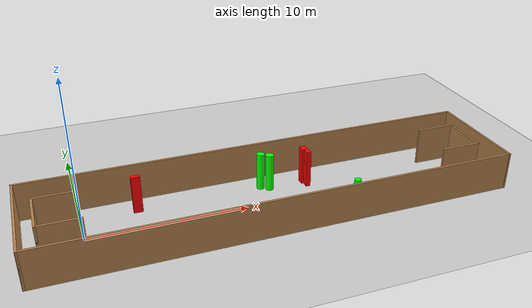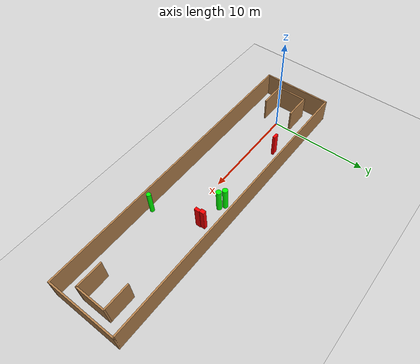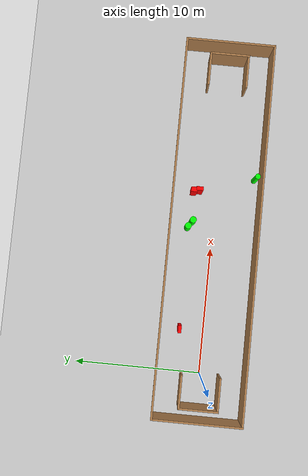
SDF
<sdf version="1.7">
 <world name="default">
  <light name="sun" type="directional">
   <pose>0 0 10 0 -0 0</pose>
   <diffuse>0.8 0.8 0.8 1</diffuse>
   <specular>0.2 0.2 0.2 1</specular>
   <attenuation>
    <range>1000</range>
    <constant>0.9</constant>
    <linear>0.01</linear>
    <quadratic>0.001</quadratic>
   </attenuation>
   <direction>-0.5 0.1 -0.9</direction>
   <spot><inner_angle>0</inner_angle><outer_angle>0</outer_angle><falloff>0</falloff></spot>
  </light>
  <model name="ground_plane">
   <static>1</static>
   <link name="link">
    <collision name="collision">
     <geometry><plane><normal>0 0 1</normal><size>100 100</size></plane></geometry>
     <surface>
      <contact><collide_bitmask>65535</collide_bitmask></contact>
      <friction><ode><mu>100</mu><mu2>50</mu2></ode></friction>
     </surface>
    </collision>
    <visual name="visual">
     <cast_shadows>0</cast_shadows>
     <geometry><plane><normal>0 0 1</normal><size>100 100</size></plane></geometry>
     <material>
      <script><uri>file://media/materials/scripts/gazebo.material</uri><name>Gazebo/Grey</name></script>
     </material>
    </visual>
   </link>
  </model>
  <gravity>0 0 -9.8</gravity>
  <magnetic_field>6e-06 2.3e-05 -4.2e-05</magnetic_field>
  <atmosphere type="adiabatic"/>
  <physics type="ode">
   <max_step_size>0.001</max_step_size>
   <real_time_factor>1</real_time_factor>
   <real_time_update_rate>1000</real_time_update_rate>
  </physics>
  <scene><ambient>0.4 0.4 0.4 1</ambient><background>0.7 0.7 0.7 1</background><shadows>1</shadows></scene>
  <spherical_coordinates>
   <surface_model>EARTH_WGS84</surface_model>
   <latitude_deg>0</latitude_deg>
   <longitude_deg>0</longitude_deg>
   <elevation>0</elevation>
   <heading_deg>0</heading_deg>
  </spherical_coordinates>
  <model name="my_base_walls">
   <link name="Wall_0">
    <collision name="Wall_0_Collision">
     <geometry><box><size>7.15 0.15 2.5</size></box></geometry>
     <pose>0 0 1.25 0 -0 0</pose>
    </collision>
    <visual name="Wall_0_Visual">
     <pose>0 0 1.25 0 -0 0</pose>
     <geometry><box><size>7.15 0.15 2.5</size></box></geometry>
     <material>
      <script><uri>file://media/materials/scripts/gazebo.material</uri><name>Gazebo/Wood</name></script>
      <ambient>1 1 1 1</ambient>
     </material>
     <meta><layer>0</layer></meta>
    </visual>
    <pose>-15 0 0 0 -0 1.5708</pose>
   </link>
   <link name="Wall_10">
    <collision name="Wall_10_Collision">
     <geometry><box><size>2.65 0.15 2.5</size></box></geometry>
     <pose>0 0 1.25 0 -0 0</pose>
    </collision>
    <visual name="Wall_10_Visual">
     <pose>0 0 1.25 0 -0 0</pose>
     <geometry><box><size>2.65 0.15 2.5</size></box></geometry>
     <material>
      <script><uri>file://media/materials/scripts/gazebo.material</uri><name>Gazebo/Wood</name></script>
      <ambient>1 1 1 1</ambient>
     </material>
     <meta><layer>0</layer></meta>
    </visual>
    <pose>-12.75 -1.5 0 0 -0 0</pose>
   </link>
   <link name="Wall_12">
    <collision name="Wall_12_Collision">
     <geometry><box><size>2.65 0.15 2.5</size></box></geometry>
     <pose>0 0 1.25 0 -0 0</pose>
    </collision>
    <visual name="Wall_12_Visual">
     <pose>0 0 1.25 0 -0 0</pose>
     <geometry><box><size>2.65 0.15 2.5</size></box></geometry>
     <material>
      <script><uri>file://media/materials/scripts/gazebo.material</uri><name>Gazebo/Wood</name></script>
      <ambient>1 1 1 1</ambient>
     </material>
     <meta><layer>0</layer></meta>
    </visual>
    <pose>-12.75 1.5 0 0 -0 0</pose>
   </link>
   <link name="Wall_14">
    <collision name="Wall_14_Collision">
     <geometry><box><size>3.15 0.15 2.5</size></box></geometry>
     <pose>0 0 1.25 0 -0 0</pose>
    </collision>
    <visual name="Wall_14_Visual">
     <pose>0 0 1.25 0 -0 0</pose>
     <geometry><box><size>3.15 0.15 2.5</size></box></geometry>
     <material>
      <script><uri>file://media/materials/scripts/gazebo.material</uri><name>Gazebo/Wood</name></script>
      <ambient>1 1 1 1</ambient>
     </material>
     <meta><layer>0</layer></meta>
    </visual>
    <pose>14 0 0 0 -0 -1.5708</pose>
   </link>
   <link name="Wall_15">
    <collision name="Wall_15_Collision">
     <geometry><box><size>2.65 0.15 2.5</size></box></geometry>
     <pose>0 0 1.25 0 -0 0</pose>
    </collision>
    <visual name="Wall_15_Visual">
     <pose>0 0 1.25 0 -0 0</pose>
     <geometry><box><size>2.65 0.15 2.5</size></box></geometry>
     <material>
      <script><uri>file://media/materials/scripts/gazebo.material</uri><name>Gazebo/Wood</name></script>
      <ambient>1 1 1 1</ambient>
     </material>
     <meta><layer>0</layer></meta>
    </visual>
    <pose>12.75 -1.5 0 0 -0 3.14159</pose>
   </link>
   <link name="Wall_17">
    <collision name="Wall_17_Collision">
     <geometry><box><size>2.65 0.15 2.5</size></box></geometry>
     <pose>0 0 1.25 0 -0 0</pose>
    </collision>
    <visual name="Wall_17_Visual">
     <pose>0 0 1.25 0 -0 0</pose>
     <geometry><box><size>2.65 0.15 2.5</size></box></geometry>
     <material>
      <script><uri>file://media/materials/scripts/gazebo.material</uri><name>Gazebo/Wood</name></script>
      <ambient>1 1 1 1</ambient>
     </material>
     <meta><layer>0</layer></meta>
    </visual>
    <pose>12.75 1.5 0 0 -0 3.14159</pose>
   </link>
   <link name="Wall_2">
    <collision name="Wall_2_Collision">
     <geometry><box><size>30.15 0.15 2.5</size></box></geometry>
     <pose>0 0 1.25 0 -0 0</pose>
    </collision>
    <visual name="Wall_2_Visual">
     <pose>0 0 1.25 0 -0 0</pose>
     <geometry><box><size>30.15 0.15 2.5</size></box></geometry>
     <material>
      <script><uri>file://media/materials/scripts/gazebo.material</uri><name>Gazebo/Wood</name></script>
      <ambient>1 1 1 1</ambient>
     </material>
     <meta><layer>0</layer></meta>
    </visual>
    <pose>-0 -3.5 0 0 -0 0</pose>
   </link>
   <link name="Wall_4">
    <collision name="Wall_4_Collision">
     <geometry><box><size>30.15 0.15 2.5</size></box></geometry>
     <pose>0 0 1.25 0 -0 0</pose>
    </collision>
    <visual name="Wall_4_Visual">
     <pose>0 0 1.25 0 -0 0</pose>
     <geometry><box><size>30.15 0.15 2.5</size></box></geometry>
     <material>
      <script><uri>file://media/materials/scripts/gazebo.material</uri><name>Gazebo/Wood</name></script>
      <ambient>1 1 1 1</ambient>
     </material>
     <meta><layer>0</layer></meta>
    </visual>
    <pose>-0 3.5 0 0 -0 0</pose>
   </link>
   <link name="Wall_6">
    <collision name="Wall_6_Collision">
     <geometry><box><size>7.15 0.15 2.5</size></box></geometry>
     <pose>0 0 1.25 0 -0 0</pose>
    </collision>
    <visual name="Wall_6_Visual">
     <pose>0 0 1.25 0 -0 0</pose>
     <geometry><box><size>7.15 0.15 2.5</size></box></geometry>
     <material>
      <script><uri>file://media/materials/scripts/gazebo.material</uri><name>Gazebo/Wood</name></script>
      <ambient>1 1 1 1</ambient>
     </material>
     <meta><layer>0</layer></meta>
    </visual>
    <pose>15 0 0 0 -0 -1.5708</pose>
   </link>
   <link name="Wall_9">
    <collision name="Wall_9_Collision">
     <geometry><box><size>3.15 0.15 2.5</size></box></geometry>
     <pose>0 0 1.25 0 -0 0</pose>
    </collision>
    <visual name="Wall_9_Visual">
     <pose>0 0 1.25 0 -0 0</pose>
     <geometry><box><size>3.15 0.15 2.5</size></box></geometry>
     <material>
      <script><uri>file://media/materials/scripts/gazebo.material</uri><name>Gazebo/Wood</name></script>
      <ambient>1 1 1 1</ambient>
     </material>
     <meta><layer>0</layer></meta>
    </visual>
    <pose>-14 0 0 0 -0 -1.5708</pose>
   </link>
   <static>1</static>
   <pose>11.5 0 0 0 -0 0</pose>
  </model>
  <model name="cylinder1">
   <static>1</static>
   <link name="link">
    <inertial>
     <mass>1</mass>
     <inertia><ixx>0.5</ixx><ixy>0</ixy><ixz>0</ixz><iyy>0.5</iyy><iyz>0</iyz><izz>1</izz></inertia>
    </inertial>
    <collision name="collision">
     <geometry><cylinder><radius>0.2150126043186394</radius><length>2.5</length></cylinder></geometry>
    </collision>
    <visual name="visual">
     <geometry><cylinder><radius>0.2150126043186394</radius><length>2.5</length></cylinder></geometry>
     <material>
      <ambient>0 1 0 1</ambient>
      <diffuse>0 1 0 1</diffuse>
      <specular>0.1 0.1 0.1 1</specular>
      <emissive>0 0 0 0</emissive>
     </material>
    </visual>
   </link>
   <pose>15.941927518101421 -3.0368237955080097 1.25 0 0 0</pose>
  </model>
  <model name="cylinder2">
   <static>1</static>
   <link name="link">
    <inertial>
     <mass>1</mass>
     <inertia><ixx>0.5</ixx><ixy>0</ixy><ixz>0</ixz><iyy>0.5</iyy><iyz>0</iyz><izz>1</izz></inertia>
    </inertial>
    <collision name="collision">
     <geometry><cylinder><radius>0.260827758743134</radius><length>2.5</length></cylinder></geometry>
    </collision>
    <visual name="visual">
     <geometry><cylinder><radius>0.260827758743134</radius><length>2.5</length></cylinder></geometry>
     <material>
      <ambient>0 1 0 1</ambient>
      <diffuse>0 1 0 1</diffuse>
      <specular>0.1 0.1 0.1 1</specular>
      <emissive>0 0 0 0</emissive>
     </material>
    </visual>
   </link>
   <pose>12.069843583428483 1.7104143112846026 1.25 0 0 0</pose>
  </model>
  <model name="cylinder3">
   <static>1</static>
   <link name="link">
    <inertial>
     <mass>1</mass>
     <inertia><ixx>0.5</ixx><ixy>0</ixy><ixz>0</ixz><iyy>0.5</iyy><iyz>0</iyz><izz>1</izz></inertia>
    </inertial>
    <collision name="collision">
     <geometry><cylinder><radius>0.2584471849975937</radius><length>2.5</length></cylinder></geometry>
    </collision>
    <visual name="visual">
     <geometry><cylinder><radius>0.2584471849975937</radius><length>2.5</length></cylinder></geometry>
     <material>
      <ambient>0 1 0 1</ambient>
      <diffuse>0 1 0 1</diffuse>
      <specular>0.1 0.1 0.1 1</specular>
      <emissive>0 0 0 0</emissive>
     </material>
    </visual>
   </link>
   <pose>11.576169329278859 2.049392787953339 1.25 0 0 0</pose>
  </model>
  <model name="box1">
   <static>1</static>
   <link name="link">
    <inertial>
     <mass>1</mass>
     <inertia><ixx>0.083</ixx><ixy>0</ixy><ixz>0</ixz><iyy>0.083</iyy><iyz>0</iyz><izz>0.083</izz></inertia>
    </inertial>
    <collision name="collision">
     <geometry><box><size>0.5823143867941405 0.25730141042246063 2.5</size></box></geometry>
    </collision>
    <visual name="visual">
     <geometry><box><size>0.5823143867941405 0.25730141042246063 2.5</size></box></geometry>
     <material>
      <ambient>1 0 0 1</ambient>
      <diffuse>1 0 0 1</diffuse>
      <specular>0.1 0.1 0.1 1</specular>
      <emissive>0 0 0 0</emissive>
     </material>
    </visual>
    <sensor name="my_contact" type="contact">
     <contact><collision>box_collision</collision><topic>__default_topic__</topic></contact>
    </sensor>
   </link>
   <pose>3.5127075769590252 1.9705162433094339 1.25 0 0 0</pose>
  </model>
  <model name="box2">
   <static>1</static>
   <link name="link">
    <inertial>
     <mass>1</mass>
     <inertia><ixx>0.083</ixx><ixy>0</ixy><ixz>0</ixz><iyy>0.083</iyy><iyz>0</iyz><izz>0.083</izz></inertia>
    </inertial>
    <collision name="collision">
     <geometry><box><size>0.29709786929300797 0.5354643238405524 2.5</size></box></geometry>
    </collision>
    <visual name="visual">
     <geometry><box><size>0.29709786929300797 0.5354643238405524 2.5</size></box></geometry>
     <material>
      <ambient>1 0 0 1</ambient>
      <diffuse>1 0 0 1</diffuse>
      <specular>0.1 0.1 0.1 1</specular>
      <emissive>0 0 0 0</emissive>
     </material>
    </visual>
    <sensor name="my_contact" type="contact">
     <contact><collision>box_collision</collision><topic>__default_topic__</topic></contact>
    </sensor>
   </link>
   <pose>14.573354089833067 1.401950991899211 1.25 0 0 0</pose>
  </model>
  <model name="box3">
   <static>1</static>
   <link name="link">
    <inertial>
     <mass>1</mass>
     <inertia><ixx>0.083</ixx><ixy>0</ixy><ixz>0</ixz><iyy>0.083</iyy><iyz>0</iyz><izz>0.083</izz></inertia>
    </inertial>
    <collision name="collision">
     <geometry><box><size>0.3762610256928304 0.488173484850863 2.5</size></box></geometry>
    </collision>
    <visual name="visual">
     <geometry><box><size>0.3762610256928304 0.488173484850863 2.5</size></box></geometry>
     <material>
      <ambient>1 0 0 1</ambient>
      <diffuse>1 0 0 1</diffuse>
      <specular>0.1 0.1 0.1 1</specular>
      <emissive>0 0 0 0</emissive>
     </material>
    </visual>
    <sensor name="my_contact" type="contact">
     <contact><collision>box_collision</collision><topic>__default_topic__</topic></contact>
    </sensor>
   </link>
   <pose>14.46949204496242 1.8393623329025992 1.25 0 0 0</pose>
  </model>
 </world>
</sdf>
